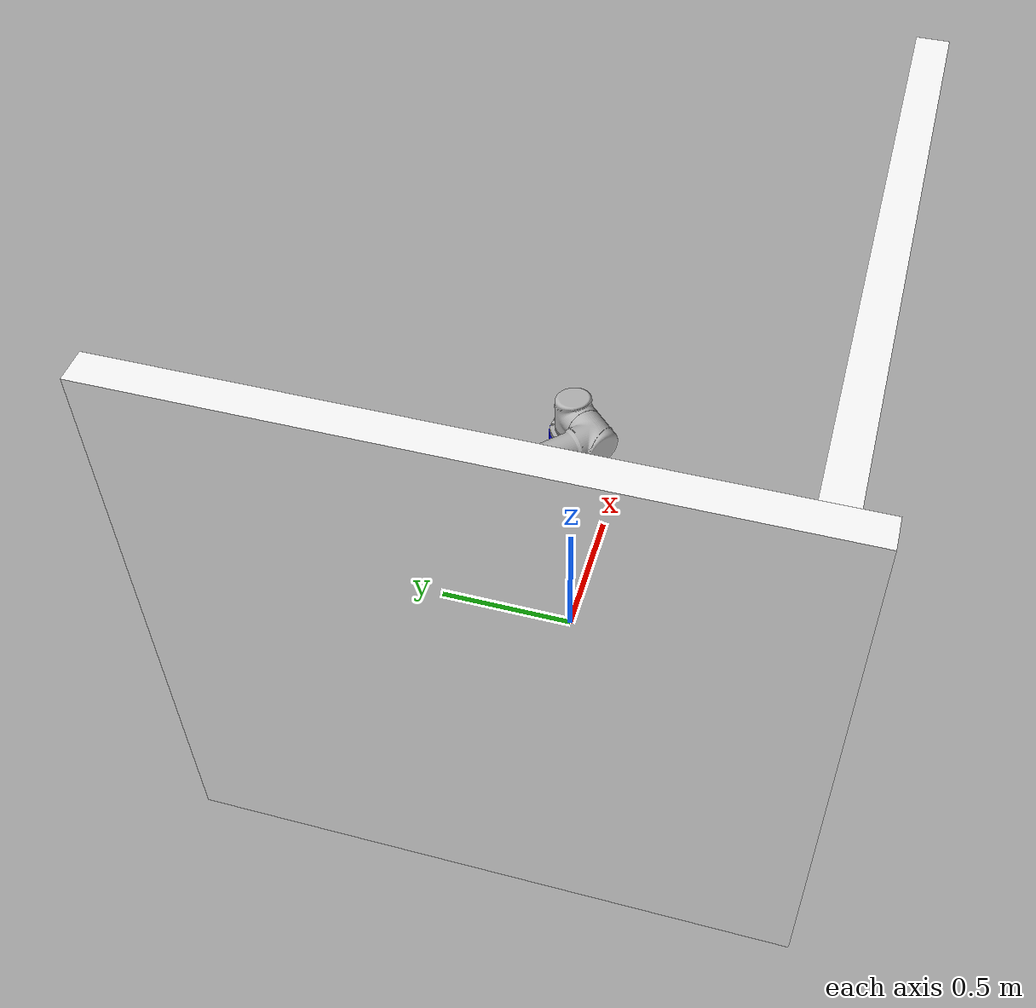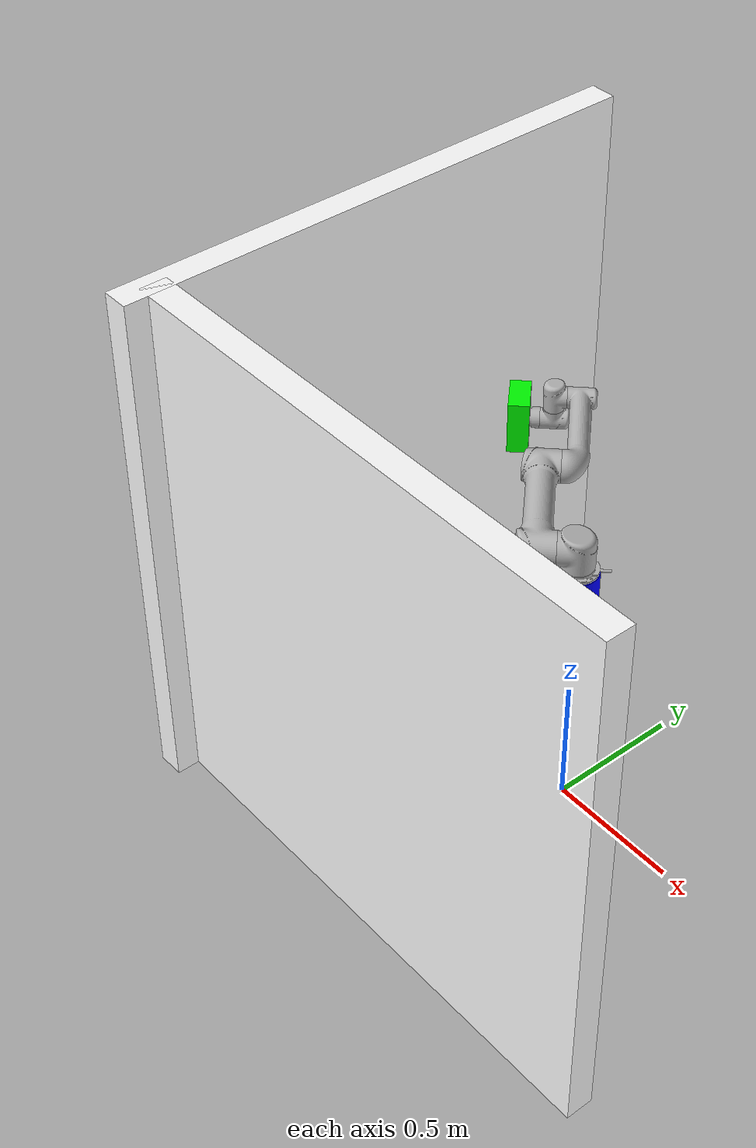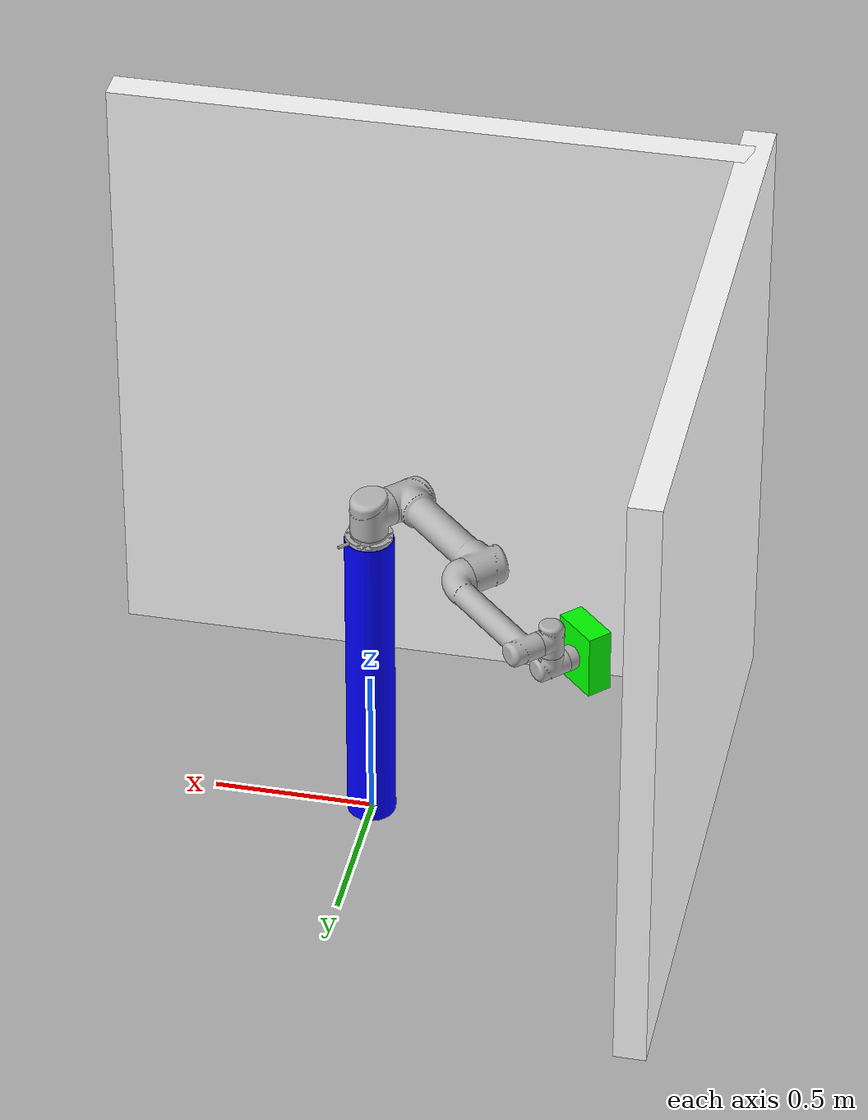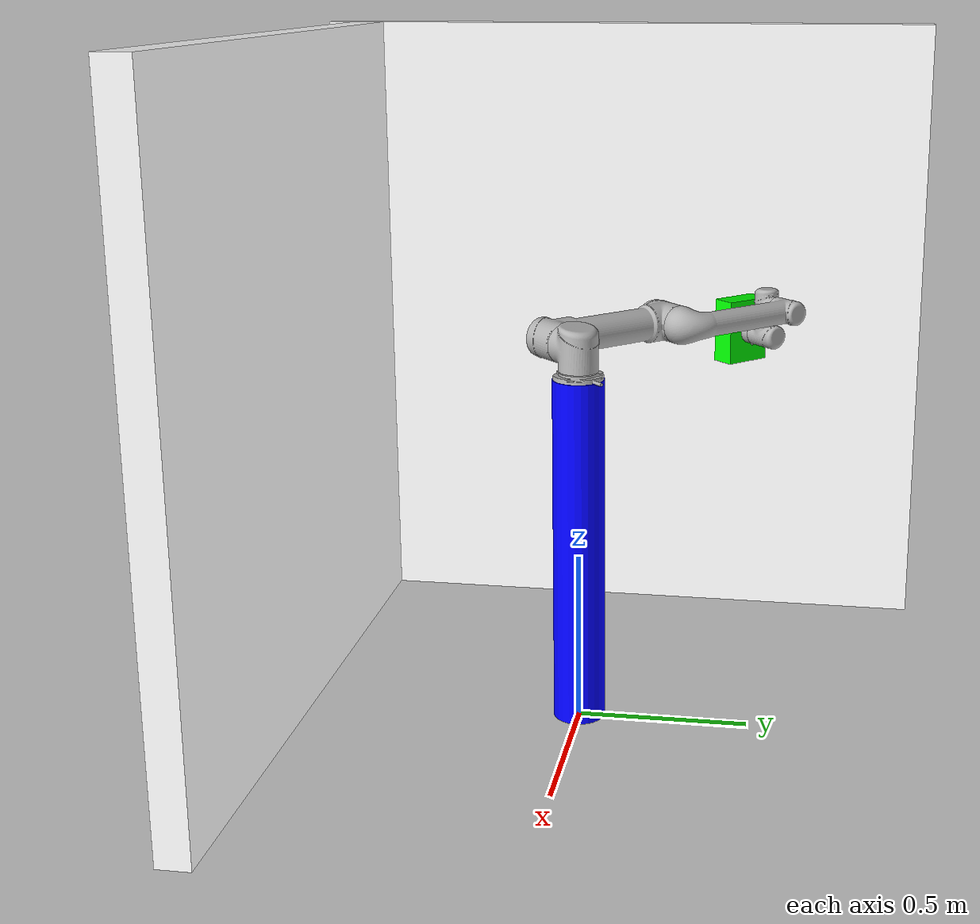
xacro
<?xml version="1.0" ?>
<!-- |    This document was autogenerated by xacro from yak_ur5_workcell.xacro         | -->
<!-- |    EDITING THIS FILE BY HAND IS NOT RECOMMENDED                                 | -->
<robot name="yak_ur5_workcell" xmlns:xacro="http://ros.org/wiki/xacro">
  <!-- measured from model -->
  <!--property name="shoulder_height" value="0.089159" /-->
  <!--property name="shoulder_offset" value="0.13585" /-->
  <!-- shoulder_offset - elbow_offset + wrist_1_length = 0.10915 -->
  <!--property name="upper_arm_length" value="0.42500" /-->
  <!--property name="elbow_offset" value="0.1197" /-->
  <!-- CAD measured -->
  <!--property name="forearm_length" value="0.39225" /-->
  <!--property name="wrist_1_length" value="0.093" /-->
  <!-- CAD measured -->
  <!--property name="wrist_2_length" value="0.09465" /-->
  <!-- In CAD this distance is 0.930, but in the spec it is 0.09465 -->
  <!--property name="wrist_3_length" value="0.0823" /-->
  <!-- manually measured -->
  <link name="base_link">
    <visual>
      <geometry>
        <mesh filename="package://ur_description/meshes/ur5/visual/base.dae"/>
      </geometry>
      <material name="LightGrey">
        <color rgba="0.7 0.7 0.7 1.0"/>
      </material>
    </visual>
    <collision>
      <geometry>
        <mesh filename="package://ur_description/meshes/ur5/collision/base.stl"/>
      </geometry>
    </collision>
    <inertial>
      <mass value="4.0"/>
      <origin rpy="0 0 0" xyz="0.0 0.0 0.0"/>
      <inertia ixx="0.00443333156" ixy="0.0" ixz="0.0" iyy="0.00443333156" iyz="0.0" izz="0.0072"/>
    </inertial>
  </link>
  <joint name="shoulder_pan_joint" type="revolute">
    <parent link="base_link"/>
    <child link="shoulder_link"/>
    <origin rpy="0.0 0.0 0.0" xyz="0.0 0.0 0.089159"/>
    <axis xyz="0 0 1"/>
    <limit effort="150.0" lower="-3.14159265359" upper="3.14159265359" velocity="3.15"/>
    <dynamics damping="0.0" friction="0.0"/>
  </joint>
  <link name="shoulder_link">
    <visual>
      <geometry>
        <mesh filename="package://ur_description/meshes/ur5/visual/shoulder.dae"/>
      </geometry>
      <material name="LightGrey">
        <color rgba="0.7 0.7 0.7 1.0"/>
      </material>
    </visual>
    <collision>
      <geometry>
        <mesh filename="package://ur_description/meshes/ur5/collision/shoulder.stl"/>
      </geometry>
    </collision>
    <inertial>
      <mass value="3.7"/>
      <origin rpy="0 0 0" xyz="0.0 0.0 0.0"/>
      <inertia ixx="0.010267495893" ixy="0.0" ixz="0.0" iyy="0.010267495893" iyz="0.0" izz="0.00666"/>
    </inertial>
  </link>
  <joint name="shoulder_lift_joint" type="revolute">
    <parent link="shoulder_link"/>
    <child link="upper_arm_link"/>
    <origin rpy="0.0 1.57079632679 0.0" xyz="0.0 0.13585 0.0"/>
    <axis xyz="0 1 0"/>
    <limit effort="150.0" lower="-3.14159265359" upper="3.14159265359" velocity="3.15"/>
    <dynamics damping="0.0" friction="0.0"/>
  </joint>
  <link name="upper_arm_link">
    <visual>
      <geometry>
        <mesh filename="package://ur_description/meshes/ur5/visual/upperarm.dae"/>
      </geometry>
      <material name="LightGrey">
        <color rgba="0.7 0.7 0.7 1.0"/>
      </material>
    </visual>
    <collision>
      <geometry>
        <mesh filename="package://ur_description/meshes/ur5/collision/upperarm.stl"/>
      </geometry>
    </collision>
    <inertial>
      <mass value="8.393"/>
      <origin rpy="0 0 0" xyz="0.0 0.0 0.28"/>
      <inertia ixx="0.22689067591" ixy="0.0" ixz="0.0" iyy="0.22689067591" iyz="0.0" izz="0.0151074"/>
    </inertial>
  </link>
  <joint name="elbow_joint" type="revolute">
    <parent link="upper_arm_link"/>
    <child link="forearm_link"/>
    <origin rpy="0.0 0.0 0.0" xyz="0.0 -0.1197 0.425"/>
    <axis xyz="0 1 0"/>
    <limit effort="150.0" lower="-3.14159265359" upper="3.14159265359" velocity="3.15"/>
    <dynamics damping="0.0" friction="0.0"/>
  </joint>
  <link name="forearm_link">
    <visual>
      <geometry>
        <mesh filename="package://ur_description/meshes/ur5/visual/forearm.dae"/>
      </geometry>
      <material name="LightGrey">
        <color rgba="0.7 0.7 0.7 1.0"/>
      </material>
    </visual>
    <collision>
      <geometry>
        <mesh filename="package://ur_description/meshes/ur5/collision/forearm.stl"/>
      </geometry>
    </collision>
    <inertial>
      <mass value="2.275"/>
      <origin rpy="0 0 0" xyz="0.0 0.0 0.25"/>
      <inertia ixx="0.049443313556" ixy="0.0" ixz="0.0" iyy="0.049443313556" iyz="0.0" izz="0.004095"/>
    </inertial>
  </link>
  <joint name="wrist_1_joint" type="revolute">
    <parent link="forearm_link"/>
    <child link="wrist_1_link"/>
    <origin rpy="0.0 1.57079632679 0.0" xyz="0.0 0.0 0.39225"/>
    <axis xyz="0 1 0"/>
    <limit effort="28.0" lower="-3.14159265359" upper="3.14159265359" velocity="3.2"/>
    <dynamics damping="0.0" friction="0.0"/>
  </joint>
  <link name="wrist_1_link">
    <visual>
      <geometry>
        <mesh filename="package://ur_description/meshes/ur5/visual/wrist1.dae"/>
      </geometry>
      <material name="LightGrey">
        <color rgba="0.7 0.7 0.7 1.0"/>
      </material>
    </visual>
    <collision>
      <geometry>
        <mesh filename="package://ur_description/meshes/ur5/collision/wrist1.stl"/>
      </geometry>
    </collision>
    <inertial>
      <mass value="1.219"/>
      <origin rpy="0 0 0" xyz="0.0 0.0 0.0"/>
      <inertia ixx="0.111172755531" ixy="0.0" ixz="0.0" iyy="0.111172755531" iyz="0.0" izz="0.21942"/>
    </inertial>
  </link>
  <joint name="wrist_2_joint" type="revolute">
    <parent link="wrist_1_link"/>
    <child link="wrist_2_link"/>
    <origin rpy="0.0 0.0 0.0" xyz="0.0 0.093 0.0"/>
    <axis xyz="0 0 1"/>
    <limit effort="28.0" lower="-3.14159265359" upper="3.14159265359" velocity="3.2"/>
    <dynamics damping="0.0" friction="0.0"/>
  </joint>
  <link name="wrist_2_link">
    <visual>
      <geometry>
        <mesh filename="package://ur_description/meshes/ur5/visual/wrist2.dae"/>
      </geometry>
      <material name="LightGrey">
        <color rgba="0.7 0.7 0.7 1.0"/>
      </material>
    </visual>
    <collision>
      <geometry>
        <mesh filename="package://ur_description/meshes/ur5/collision/wrist2.stl"/>
      </geometry>
    </collision>
    <inertial>
      <mass value="1.219"/>
      <origin rpy="0 0 0" xyz="0.0 0.0 0.0"/>
      <inertia ixx="0.111172755531" ixy="0.0" ixz="0.0" iyy="0.111172755531" iyz="0.0" izz="0.21942"/>
    </inertial>
  </link>
  <joint name="wrist_3_joint" type="revolute">
    <parent link="wrist_2_link"/>
    <child link="wrist_3_link"/>
    <origin rpy="0.0 0.0 0.0" xyz="0.0 0.0 0.09465"/>
    <axis xyz="0 1 0"/>
    <limit effort="28.0" lower="-3.14159265359" upper="3.14159265359" velocity="3.2"/>
    <dynamics damping="0.0" friction="0.0"/>
  </joint>
  <link name="wrist_3_link">
    <visual>
      <geometry>
        <mesh filename="package://ur_description/meshes/ur5/visual/wrist3.dae"/>
      </geometry>
      <material name="LightGrey">
        <color rgba="0.7 0.7 0.7 1.0"/>
      </material>
    </visual>
    <collision>
      <geometry>
        <mesh filename="package://ur_description/meshes/ur5/collision/wrist3.stl"/>
      </geometry>
    </collision>
    <inertial>
      <mass value="0.1879"/>
      <origin rpy="0 0 0" xyz="0.0 0.0 0.0"/>
      <inertia ixx="0.0171364731454" ixy="0.0" ixz="0.0" iyy="0.0171364731454" iyz="0.0" izz="0.033822"/>
    </inertial>
  </link>
  <joint name="ee_fixed_joint" type="fixed">
    <parent link="wrist_3_link"/>
    <child link="ee_link"/>
    <origin rpy="0.0 0.0 1.57079632679" xyz="0.0 0.0823 0.0"/>
  </joint>
  <link name="ee_link">
    <collision>
      <geometry>
        <box size="0.01 0.01 0.01"/>
      </geometry>
      <origin rpy="0 0 0" xyz="-0.01 0 0"/>
    </collision>
  </link>
  <transmission name="shoulder_pan_trans">
    <type>transmission_interface/SimpleTransmission</type>
    <joint name="shoulder_pan_joint">
      <hardwareInterface>PositionJointInterface</hardwareInterface>
    </joint>
    <actuator name="shoulder_pan_motor">
      <mechanicalReduction>1</mechanicalReduction>
    </actuator>
  </transmission>
  <transmission name="shoulder_lift_trans">
    <type>transmission_interface/SimpleTransmission</type>
    <joint name="shoulder_lift_joint">
      <hardwareInterface>PositionJointInterface</hardwareInterface>
    </joint>
    <actuator name="shoulder_lift_motor">
      <mechanicalReduction>1</mechanicalReduction>
    </actuator>
  </transmission>
  <transmission name="elbow_trans">
    <type>transmission_interface/SimpleTransmission</type>
    <joint name="elbow_joint">
      <hardwareInterface>PositionJointInterface</hardwareInterface>
    </joint>
    <actuator name="elbow_motor">
      <mechanicalReduction>1</mechanicalReduction>
    </actuator>
  </transmission>
  <transmission name="wrist_1_trans">
    <type>transmission_interface/SimpleTransmission</type>
    <joint name="wrist_1_joint">
      <hardwareInterface>PositionJointInterface</hardwareInterface>
    </joint>
    <actuator name="wrist_1_motor">
      <mechanicalReduction>1</mechanicalReduction>
    </actuator>
  </transmission>
  <transmission name="wrist_2_trans">
    <type>transmission_interface/SimpleTransmission</type>
    <joint name="wrist_2_joint">
      <hardwareInterface>PositionJointInterface</hardwareInterface>
    </joint>
    <actuator name="wrist_2_motor">
      <mechanicalReduction>1</mechanicalReduction>
    </actuator>
  </transmission>
  <transmission name="wrist_3_trans">
    <type>transmission_interface/SimpleTransmission</type>
    <joint name="wrist_3_joint">
      <hardwareInterface>PositionJointInterface</hardwareInterface>
    </joint>
    <actuator name="wrist_3_motor">
      <mechanicalReduction>1</mechanicalReduction>
    </actuator>
  </transmission>
  <!-- nothing to do here at the moment -->
  <!-- ROS base_link to UR 'Base' Coordinates transform -->
  <link name="base"/>
  <joint name="base_link-base_fixed_joint" type="fixed">
    <!-- NOTE: this rotation is only needed as long as base_link itself is
                 not corrected wrt the real robot (ie: rotated over 180
                 degrees)
      -->
    <origin rpy="0 0 -3.14159265359" xyz="0 0 0"/>
    <parent link="base_link"/>
    <child link="base"/>
  </joint>
  <!-- Frame coincident with all-zeros TCP on UR controller -->
  <link name="tool0"/>
  <joint name="wrist_3_link-tool0_fixed_joint" type="fixed">
    <origin rpy="-1.57079632679 0 0" xyz="0 0.0823 0"/>
    <parent link="wrist_3_link"/>
    <child link="tool0"/>
  </joint>
  <link name="world_frame"/>
  <link name="tsdf_frame"/>
  <link name="stand">
    <origin rpy="0 0 0" xyz="0 0 0"/>
    <visual>
      <geometry>
        <cylinder length="1.0414" radius="0.0762"/>
      </geometry>
      <material name="blue">
        <color rgba="0 0 1 1"/>
      </material>
    </visual>
    <collision>
      <geometry>
        <cylinder length="1.0414" radius="0.0762"/>
      </geometry>
    </collision>
  </link>
  <link name="right_wall">
    <origin rpy="0 0 0" xyz="0 0 0"/>
    <visual>
      <geometry>
        <box size="2 .1 2"/>
      </geometry>
      <material name="blue">
        <color rgba="1 1 1 1"/>
      </material>
    </visual>
    <collision>
      <geometry>
        <box size="2 .1 2"/>
      </geometry>
    </collision>
  </link>
  <link name="back_wall">
    <origin rpy="0 0 0" xyz="0 0 0"/>
    <visual>
      <geometry>
        <box size=".1 2 2"/>
      </geometry>
      <material name="blue">
        <color rgba="1 1 1 1"/>
      </material>
    </visual>
    <collision>
      <geometry>
        <box size=".1 2 2"/>
      </geometry>
    </collision>
  </link>
  <link name="end_effector">
    <origin rpy="0 0 0" xyz="0.0 0.0 0.0"/>
    <visual>
      <geometry>
        <box size="0.2032 0.1524 0.0762"/>
      </geometry>
      <material name="green">
        <color rgba="0 1 0 1"/>
      </material>
    </visual>
    <collision>
      <geometry>
        <box size="0.2032 0.1524 0.0762"/>
      </geometry>
    </collision>
  </link>
  <link name="camera_link"/>
  <joint name="world_to_stand" type="fixed">
    <parent link="world_frame"/>
    <child link="stand"/>
    <origin rpy="0 0.0 0.0" xyz="0.0 0.0 0.5207"/>
  </joint>
  <joint name="stand_to_ur5" type="fixed">
    <parent link="stand"/>
    <child link="base_link"/>
    <origin rpy="0.0 0.0 -3.92699081699" xyz="0.0 0.0 0.5207"/>
  </joint>
  <joint name="tool0_to_eef" type="fixed">
    <parent link="tool0"/>
    <child link="end_effector"/>
    <origin rpy="0.0 0.0 1.57" xyz="0 0 0.0381"/>
  </joint>
  <joint name="eef_to_camera_link" type="fixed">
    <parent link="end_effector"/>
    <child link="camera_link"/>
    <origin rpy="-1.57 0.0 0.0" xyz="0.0 0.0 0.0"/>
  </joint>
  <!-- todo these paremeters need to  be synced with kinfu node loanch params -->
  <joint name="world_frame_to_tsdf_frame" type="fixed">
    <parent link="world_frame"/>
    <child link="tsdf_frame"/>
    <origin rpy="0.0 0.0 0.0" xyz="0.4 -0.5 1"/>
  </joint>
  <joint name="world_to_right_wall" type="fixed">
    <parent link="world_frame"/>
    <child link="right_wall"/>
    <origin rpy="0.0 0.0 0.0" xyz="0 -0.8636 1"/>
  </joint>
  <joint name="world_to_back_wall" type="fixed">
    <parent link="world_frame"/>
    <child link="back_wall"/>
    <origin rpy="0.0 0.0 0.0" xyz="-1 0.0 1"/>
  </joint>
</robot>
